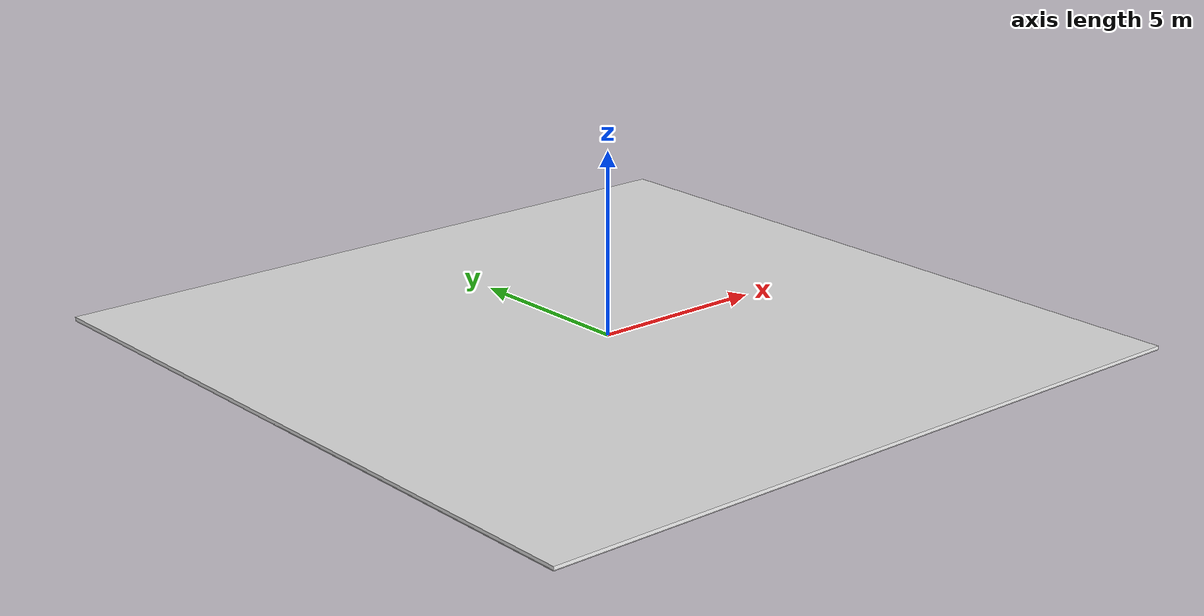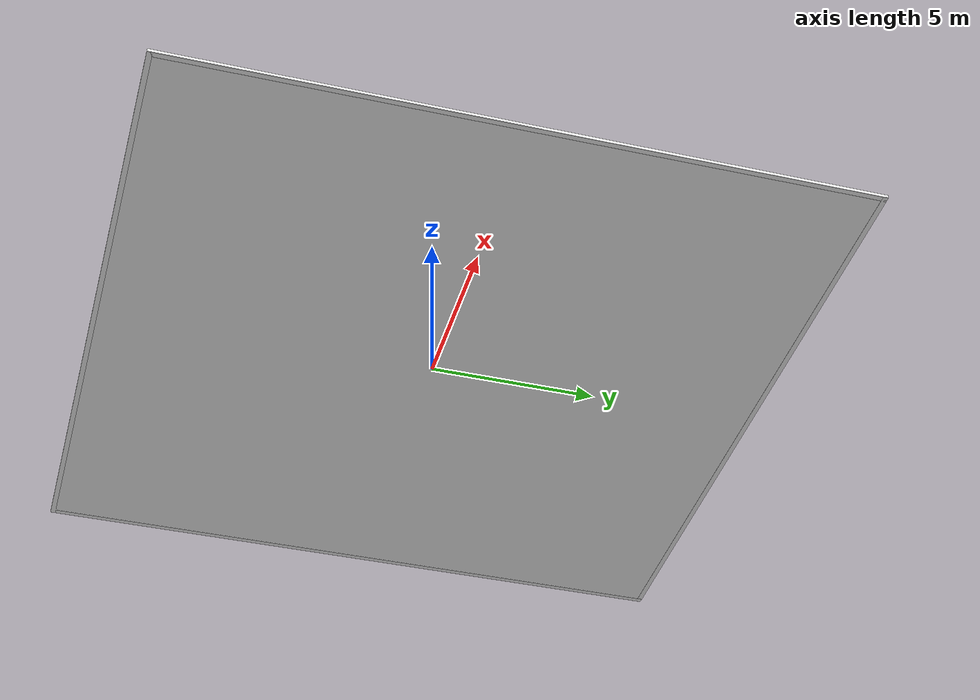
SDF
<?xml version='1.0'?>
<sdf version='1.7'>
  <model name='EmptyWorldWood'>
    <pose>0 0 0 0 -0 0</pose>
    <link name='Floor_0'>
      <collision name='Floor_0_Collision'>
        <geometry>
          <box>
            <size>20.15 20.15 0.1</size>
          </box>
        </geometry>
        <pose>0 0 0.05 0 -0 0</pose>
      </collision>
      <visual name='Floor_0_Visual'>
        <pose>0 0 0.05 0 -0 0</pose>
        <geometry>
          <box>
            <size>20.15 20.15 0.1</size>
          </box>
        </geometry>
        <material>
          <script>
            <uri>file://media/materials/scripts/gazebo.material</uri>
            <name>Gazebo/White</name>
          </script>
          <ambient>1 1 1 1</ambient>
        </material>
        <meta>
          <layer>1</layer>
        </meta>
      </visual>
      <pose>0 0 0.01 0 -0 0</pose>
    </link>
    <link name='Wall_0'>
      <collision name='Wall_0_Collision'>
        <geometry>
          <box>
            <size>20.15 0.15 0.01</size>
          </box>
        </geometry>
        <pose>0 0 0.005 0 -0 0</pose>
      </collision>
      <visual name='Wall_0_Visual'>
        <pose>0 0 0.005 0 -0 0</pose>
        <geometry>
          <box>
            <size>20.15 0.15 0.01</size>
          </box>
        </geometry>
        <material>
          <script>
            <uri>file://media/materials/scripts/gazebo.material</uri>
            <name>Gazebo/White</name>
          </script>
          <ambient>1 1 1 1</ambient>
        </material>
        <meta>
          <layer>0</layer>
        </meta>
      </visual>
      <pose>0 10 0 0 -0 0</pose>
    </link>
    <link name='Wall_10'>
      <collision name='Wall_10_Collision'>
        <geometry>
          <box>
            <size>20.15 0.15 0.01</size>
          </box>
        </geometry>
        <pose>0 0 0.005 0 -0 0</pose>
      </collision>
      <visual name='Wall_10_Visual'>
        <pose>0 0 0.005 0 -0 0</pose>
        <geometry>
          <box>
            <size>20.15 0.15 0.01</size>
          </box>
        </geometry>
        <material>
          <script>
            <uri>file://media/materials/scripts/gazebo.material</uri>
            <name>Gazebo/White</name>
          </script>
          <ambient>1 1 1 1</ambient>
        </material>
        <meta>
          <layer>1</layer>
        </meta>
      </visual>
      <pose>0 -10 0.01 0 -0 0</pose>
    </link>
    <link name='Wall_11'>
      <collision name='Wall_11_Collision'>
        <geometry>
          <box>
            <size>20.15 0.15 0.01</size>
          </box>
        </geometry>
        <pose>0 0 0.005 0 -0 0</pose>
      </collision>
      <visual name='Wall_11_Visual'>
        <pose>0 0 0.005 0 -0 0</pose>
        <geometry>
          <box>
            <size>20.15 0.15 0.01</size>
          </box>
        </geometry>
        <material>
          <script>
            <uri>file://media/materials/scripts/gazebo.material</uri>
            <name>Gazebo/White</name>
          </script>
          <ambient>1 1 1 1</ambient>
        </material>
        <meta>
          <layer>1</layer>
        </meta>
      </visual>
      <pose>10 0 0.01 0 -0 1.5708</pose>
    </link>
    <link name='Wall_2'>
      <collision name='Wall_2_Collision'>
        <geometry>
          <box>
            <size>20.15 0.15 0.01</size>
          </box>
        </geometry>
        <pose>0 0 0.005 0 -0 0</pose>
      </collision>
      <visual name='Wall_2_Visual'>
        <pose>0 0 0.005 0 -0 0</pose>
        <geometry>
          <box>
            <size>20.15 0.15 0.01</size>
          </box>
        </geometry>
        <material>
          <script>
            <uri>file://media/materials/scripts/gazebo.material</uri>
            <name>Gazebo/White</name>
          </script>
          <ambient>1 1 1 1</ambient>
        </material>
        <meta>
          <layer>0</layer>
        </meta>
      </visual>
      <pose>-10 0 0 0 -0 -1.5708</pose>
    </link>
    <link name='Wall_4'>
      <collision name='Wall_4_Collision'>
        <geometry>
          <box>
            <size>20.15 0.15 0.01</size>
          </box>
        </geometry>
        <pose>0 0 0.005 0 -0 0</pose>
      </collision>
      <visual name='Wall_4_Visual'>
        <pose>0 0 0.005 0 -0 0</pose>
        <geometry>
          <box>
            <size>20.15 0.15 0.01</size>
          </box>
        </geometry>
        <material>
          <script>
            <uri>file://media/materials/scripts/gazebo.material</uri>
            <name>Gazebo/White</name>
          </script>
          <ambient>1 1 1 1</ambient>
        </material>
        <meta>
          <layer>0</layer>
        </meta>
      </visual>
      <pose>0 -10 0 0 -0 0</pose>
    </link>
    <link name='Wall_6'>
      <collision name='Wall_6_Collision'>
        <geometry>
          <box>
            <size>20.15 0.15 0.01</size>
          </box>
        </geometry>
        <pose>0 0 0.005 0 -0 0</pose>
      </collision>
      <visual name='Wall_6_Visual'>
        <pose>0 0 0.005 0 -0 0</pose>
        <geometry>
          <box>
            <size>20.15 0.15 0.01</size>
          </box>
        </geometry>
        <material>
          <script>
            <uri>file://media/materials/scripts/gazebo.material</uri>
            <name>Gazebo/White</name>
          </script>
          <ambient>1 1 1 1</ambient>
        </material>
        <meta>
          <layer>0</layer>
        </meta>
      </visual>
      <pose>10 0 0 0 -0 1.5708</pose>
    </link>
    <link name='Wall_8'>
      <collision name='Wall_8_Collision'>
        <geometry>
          <box>
            <size>20.15 0.15 0.01</size>
          </box>
        </geometry>
        <pose>0 0 0.005 0 -0 0</pose>
      </collision>
      <visual name='Wall_8_Visual'>
        <pose>0 0 0.005 0 -0 0</pose>
        <geometry>
          <box>
            <size>20.15 0.15 0.01</size>
          </box>
        </geometry>
        <material>
          <script>
            <uri>file://media/materials/scripts/gazebo.material</uri>
            <name>Gazebo/White</name>
          </script>
          <ambient>1 1 1 1</ambient>
        </material>
        <meta>
          <layer>1</layer>
        </meta>
      </visual>
      <pose>0 10 0.01 0 -0 0</pose>
    </link>
    <link name='Wall_9'>
      <collision name='Wall_9_Collision'>
        <geometry>
          <box>
            <size>20.15 0.15 0.01</size>
          </box>
        </geometry>
        <pose>0 0 0.005 0 -0 0</pose>
      </collision>
      <visual name='Wall_9_Visual'>
        <pose>0 0 0.005 0 -0 0</pose>
        <geometry>
          <box>
            <size>20.15 0.15 0.01</size>
          </box>
        </geometry>
        <material>
          <script>
            <uri>file://media/materials/scripts/gazebo.material</uri>
            <name>Gazebo/White</name>
          </script>
          <ambient>1 1 1 1</ambient>
        </material>
        <meta>
          <layer>1</layer>
        </meta>
      </visual>
      <pose>-10 0 0.01 0 -0 -1.5708</pose>
    </link>
    <static>1</static>
  </model>
</sdf>
